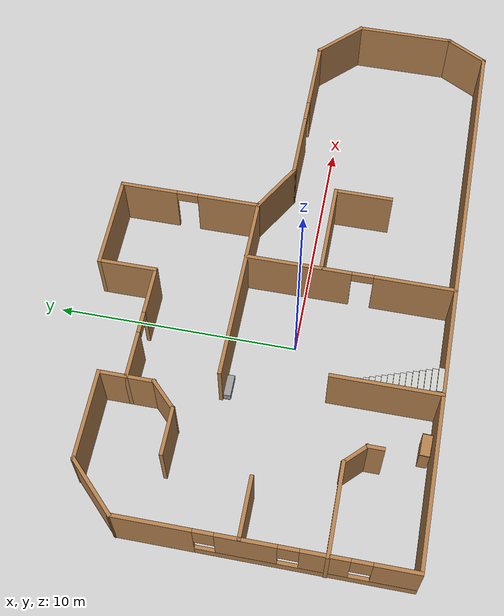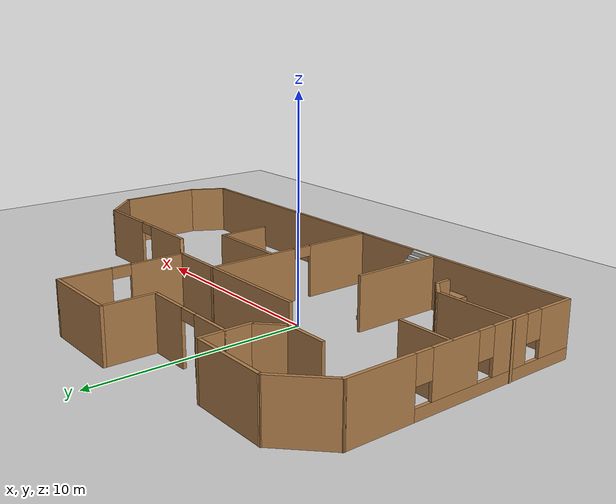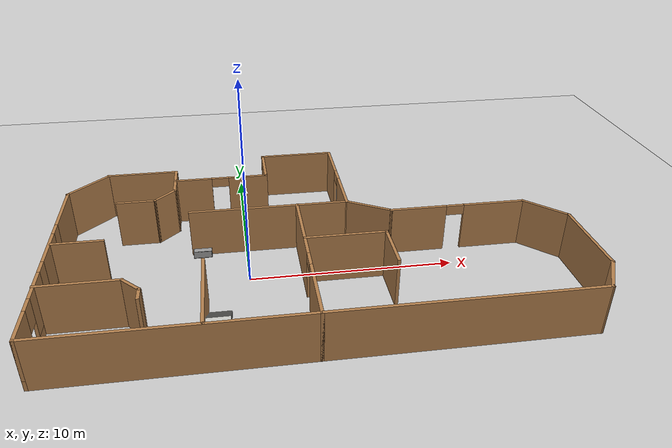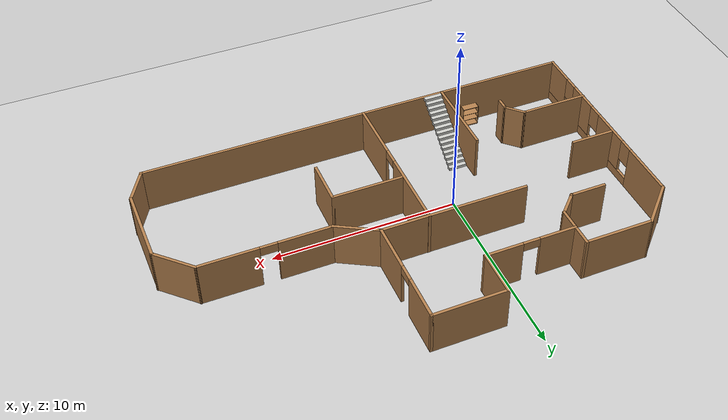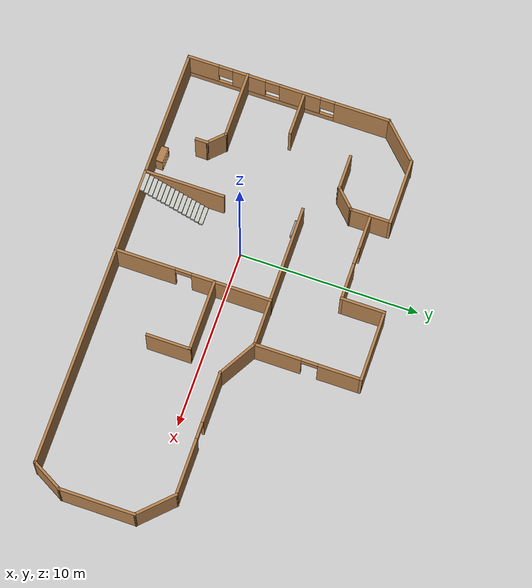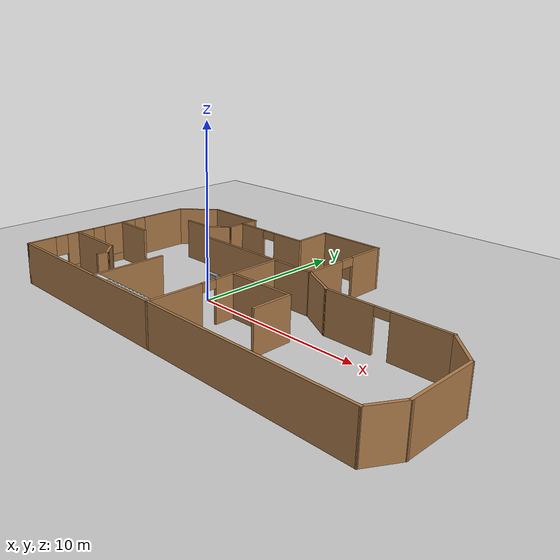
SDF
<sdf version="1.6">
 <world name="default">
  <model name="ground_plane">
   <static>1</static>
   <link name="link">
    <collision name="collision">
     <geometry><plane><normal>0 0 1</normal><size>100 100</size></plane></geometry>
     <surface><friction><ode><mu>100</mu><mu2>50</mu2></ode></friction></surface>
    </collision>
    <visual name="visual">
     <cast_shadows>0</cast_shadows>
     <geometry><plane><normal>0 0 1</normal><size>100 100</size></plane></geometry>
     <material>
      <script><uri>file://media/materials/scripts/gazebo.material</uri><name>Gazebo/Grey</name></script>
     </material>
    </visual>
   </link>
  </model>
  <model name="fireHouse">
   <pose>3.35703 1.18268 0 0 -0 0</pose>
   <link name="Stairs_2">
    <visual name="Stairs_2_Visual_0">
     <pose>-4.78332 -3.76901 0.083333 0 -0 0</pose>
     <geometry><box><size>1 0.233333 0.166667</size></box></geometry>
     <material>
      <script><uri>file://media/materials/scripts/gazebo.material</uri><name>Gazebo/CeilingTiled</name></script>
      <ambient>0.435294 0.796078 0.67451 1</ambient>
     </material>
     <meta><layer>0</layer></meta>
    </visual>
    <collision name="Stairs_2_Collision_0">
     <geometry><box><size>1 0.233333 0.166667</size></box></geometry>
     <pose>-4.78332 -3.76901 0.083333 0 -0 0</pose>
    </collision>
    <visual name="Stairs_2_Visual_1">
     <pose>-4.78332 -4.00234 0.25 0 -0 0</pose>
     <geometry><box><size>1 0.233333 0.166667</size></box></geometry>
     <material>
      <script><uri>file://media/materials/scripts/gazebo.material</uri><name>Gazebo/CeilingTiled</name></script>
      <ambient>0.435294 0.796078 0.67451 1</ambient>
     </material>
     <meta><layer>0</layer></meta>
    </visual>
    <collision name="Stairs_2_Collision_1">
     <geometry><box><size>1 0.233333 0.166667</size></box></geometry>
     <pose>-4.78332 -4.00234 0.25 0 -0 0</pose>
    </collision>
    <visual name="Stairs_2_Visual_2">
     <pose>-4.78332 -4.23567 0.416667 0 -0 0</pose>
     <geometry><box><size>1 0.233333 0.166667</size></box></geometry>
     <material>
      <script><uri>file://media/materials/scripts/gazebo.material</uri><name>Gazebo/CeilingTiled</name></script>
      <ambient>0.435294 0.796078 0.67451 1</ambient>
     </material>
     <meta><layer>0</layer></meta>
    </visual>
    <collision name="Stairs_2_Collision_2">
     <geometry><box><size>1 0.233333 0.166667</size></box></geometry>
     <pose>-4.78332 -4.23567 0.416667 0 -0 0</pose>
    </collision>
    <visual name="Stairs_2_Visual_3">
     <pose>-4.78332 -4.46901 0.583333 0 -0 0</pose>
     <geometry><box><size>1 0.233333 0.166667</size></box></geometry>
     <material>
      <script><uri>file://media/materials/scripts/gazebo.material</uri><name>Gazebo/CeilingTiled</name></script>
      <ambient>0.435294 0.796078 0.67451 1</ambient>
     </material>
     <meta><layer>0</layer></meta>
    </visual>
    <collision name="Stairs_2_Collision_3">
     <geometry><box><size>1 0.233333 0.166667</size></box></geometry>
     <pose>-4.78332 -4.46901 0.583333 0 -0 0</pose>
    </collision>
    <visual name="Stairs_2_Visual_4">
     <pose>-4.78332 -4.70234 0.75 0 -0 0</pose>
     <geometry><box><size>1 0.233333 0.166667</size></box></geometry>
     <material>
      <script><uri>file://media/materials/scripts/gazebo.material</uri><name>Gazebo/CeilingTiled</name></script>
      <ambient>0.435294 0.796078 0.67451 1</ambient>
     </material>
     <meta><layer>0</layer></meta>
    </visual>
    <collision name="Stairs_2_Collision_4">
     <geometry><box><size>1 0.233333 0.166667</size></box></geometry>
     <pose>-4.78332 -4.70234 0.75 0 -0 0</pose>
    </collision>
    <visual name="Stairs_2_Visual_5">
     <pose>-4.78332 -4.93567 0.916667 0 -0 0</pose>
     <geometry><box><size>1 0.233333 0.166667</size></box></geometry>
     <material>
      <script><uri>file://media/materials/scripts/gazebo.material</uri><name>Gazebo/CeilingTiled</name></script>
      <ambient>0.435294 0.796078 0.67451 1</ambient>
     </material>
     <meta><layer>0</layer></meta>
    </visual>
    <collision name="Stairs_2_Collision_5">
     <geometry><box><size>1 0.233333 0.166667</size></box></geometry>
     <pose>-4.78332 -4.93567 0.916667 0 -0 0</pose>
    </collision>
    <visual name="Stairs_2_Visual_6">
     <pose>-4.78332 -5.16901 1.08333 0 -0 0</pose>
     <geometry><box><size>1 0.233333 0.166667</size></box></geometry>
     <material>
      <script><uri>file://media/materials/scripts/gazebo.material</uri><name>Gazebo/CeilingTiled</name></script>
      <ambient>0.435294 0.796078 0.67451 1</ambient>
     </material>
     <meta><layer>0</layer></meta>
    </visual>
    <collision name="Stairs_2_Collision_6">
     <geometry><box><size>1 0.233333 0.166667</size></box></geometry>
     <pose>-4.78332 -5.16901 1.08333 0 -0 0</pose>
    </collision>
    <visual name="Stairs_2_Visual_7">
     <pose>-4.78332 -5.40234 1.25 0 -0 0</pose>
     <geometry><box><size>1 0.233333 0.166667</size></box></geometry>
     <material>
      <script><uri>file://media/materials/scripts/gazebo.material</uri><name>Gazebo/CeilingTiled</name></script>
      <ambient>0.435294 0.796078 0.67451 1</ambient>
     </material>
     <meta><layer>0</layer></meta>
    </visual>
    <collision name="Stairs_2_Collision_7">
     <geometry><box><size>1 0.233333 0.166667</size></box></geometry>
     <pose>-4.78332 -5.40234 1.25 0 -0 0</pose>
    </collision>
    <visual name="Stairs_2_Visual_8">
     <pose>-4.78332 -5.63567 1.41667 0 -0 0</pose>
     <geometry><box><size>1 0.233333 0.166667</size></box></geometry>
     <material>
      <script><uri>file://media/materials/scripts/gazebo.material</uri><name>Gazebo/CeilingTiled</name></script>
      <ambient>0.435294 0.796078 0.67451 1</ambient>
     </material>
     <meta><layer>0</layer></meta>
    </visual>
    <collision name="Stairs_2_Collision_8">
     <geometry><box><size>1 0.233333 0.166667</size></box></geometry>
     <pose>-4.78332 -5.63567 1.41667 0 -0 0</pose>
    </collision>
    <visual name="Stairs_2_Visual_9">
     <pose>-4.78332 -5.86901 1.58333 0 -0 0</pose>
     <geometry><box><size>1 0.233333 0.166667</size></box></geometry>
     <material>
      <script><uri>file://media/materials/scripts/gazebo.material</uri><name>Gazebo/CeilingTiled</name></script>
      <ambient>0.435294 0.796078 0.67451 1</ambient>
     </material>
     <meta><layer>0</layer></meta>
    </visual>
    <collision name="Stairs_2_Collision_9">
     <geometry><box><size>1 0.233333 0.166667</size></box></geometry>
     <pose>-4.78332 -5.86901 1.58333 0 -0 0</pose>
    </collision>
    <visual name="Stairs_2_Visual_10">
     <pose>-4.78332 -6.10234 1.75 0 -0 0</pose>
     <geometry><box><size>1 0.233333 0.166667</size></box></geometry>
     <material>
      <script><uri>file://media/materials/scripts/gazebo.material</uri><name>Gazebo/CeilingTiled</name></script>
      <ambient>0.435294 0.796078 0.67451 1</ambient>
     </material>
     <meta><layer>0</layer></meta>
    </visual>
    <collision name="Stairs_2_Collision_10">
     <geometry><box><size>1 0.233333 0.166667</size></box></geometry>
     <pose>-4.78332 -6.10234 1.75 0 -0 0</pose>
    </collision>
    <visual name="Stairs_2_Visual_11">
     <pose>-4.78332 -6.33568 1.91667 0 -0 0</pose>
     <geometry><box><size>1 0.233333 0.166667</size></box></geometry>
     <material>
      <script><uri>file://media/materials/scripts/gazebo.material</uri><name>Gazebo/CeilingTiled</name></script>
      <ambient>0.435294 0.796078 0.67451 1</ambient>
     </material>
     <meta><layer>0</layer></meta>
    </visual>
    <collision name="Stairs_2_Collision_11">
     <geometry><box><size>1 0.233333 0.166667</size></box></geometry>
     <pose>-4.78332 -6.33568 1.91667 0 -0 0</pose>
    </collision>
    <visual name="Stairs_2_Visual_12">
     <pose>-4.78332 -6.56901 2.08333 0 -0 0</pose>
     <geometry><box><size>1 0.233333 0.166667</size></box></geometry>
     <material>
      <script><uri>file://media/materials/scripts/gazebo.material</uri><name>Gazebo/CeilingTiled</name></script>
      <ambient>0.435294 0.796078 0.67451 1</ambient>
     </material>
     <meta><layer>0</layer></meta>
    </visual>
    <collision name="Stairs_2_Collision_12">
     <geometry><box><size>1 0.233333 0.166667</size></box></geometry>
     <pose>-4.78332 -6.56901 2.08333 0 -0 0</pose>
    </collision>
    <visual name="Stairs_2_Visual_13">
     <pose>-4.78332 -6.80234 2.25 0 -0 0</pose>
     <geometry><box><size>1 0.233333 0.166667</size></box></geometry>
     <material>
      <script><uri>file://media/materials/scripts/gazebo.material</uri><name>Gazebo/CeilingTiled</name></script>
      <ambient>0.435294 0.796078 0.67451 1</ambient>
     </material>
     <meta><layer>0</layer></meta>
    </visual>
    <collision name="Stairs_2_Collision_13">
     <geometry><box><size>1 0.233333 0.166667</size></box></geometry>
     <pose>-4.78332 -6.80234 2.25 0 -0 0</pose>
    </collision>
    <visual name="Stairs_2_Visual_14">
     <pose>-4.78332 -7.03567 2.41667 0 -0 0</pose>
     <geometry><box><size>1 0.233333 0.166667</size></box></geometry>
     <material>
      <script><uri>file://media/materials/scripts/gazebo.material</uri><name>Gazebo/CeilingTiled</name></script>
      <ambient>0.435294 0.796078 0.67451 1</ambient>
     </material>
     <meta><layer>0</layer></meta>
    </visual>
    <collision name="Stairs_2_Collision_14">
     <geometry><box><size>1 0.233333 0.166667</size></box></geometry>
     <pose>-4.78332 -7.03567 2.41667 0 -0 0</pose>
    </collision>
   </link>
   <link name="Wall_0">
    <collision name="Wall_0_Collision">
     <geometry><box><size>8 0.15 2.5</size></box></geometry>
     <pose>0 0 1.25 0 -0 0</pose>
    </collision>
    <visual name="Wall_0_Visual">
     <pose>0 0 1.25 0 -0 0</pose>
     <geometry><box><size>8 0.15 2.5</size></box></geometry>
     <material>
      <script><uri>file://media/materials/scripts/gazebo.material</uri><name>Gazebo/Wood</name></script>
      <ambient>1 1 1 1</ambient>
     </material>
     <meta><layer>0</layer></meta>
    </visual>
    <pose>-2.12919 1.38188 0 0 -0 0</pose>
   </link>
   <link name="Wall_1">
    <pose>1.79581 4.30688 0 0 -0 1.5708</pose>
    <visual name="Wall_1_Visual_0">
     <pose>-1.67134 0 1.25 0 -0 0</pose>
     <geometry><box><size>2.65733 0.15 2.5</size></box></geometry>
     <material>
      <script><uri>file://media/materials/scripts/gazebo.material</uri><name>Gazebo/Wood</name></script>
      <ambient>1 1 1 1</ambient>
     </material>
     <meta><layer>0</layer></meta>
    </visual>
    <collision name="Wall_1_Collision_0">
     <geometry><box><size>2.65733 0.15 2.5</size></box></geometry>
     <pose>-1.67134 0 1.25 0 -0 0</pose>
    </collision>
    <visual name="Wall_1_Visual_1">
     <pose>1.77866 0 1.25 0 -0 0</pose>
     <geometry><box><size>2.44267 0.15 2.5</size></box></geometry>
     <material>
      <script><uri>file://media/materials/scripts/gazebo.material</uri><name>Gazebo/Wood</name></script>
      <ambient>1 1 1 1</ambient>
     </material>
     <meta><layer>0</layer></meta>
    </visual>
    <collision name="Wall_1_Collision_1">
     <geometry><box><size>2.44267 0.15 2.5</size></box></geometry>
     <pose>1.77866 0 1.25 0 -0 0</pose>
    </collision>
    <visual name="Wall_1_Visual_2">
     <pose>0.107328 0 2.25 0 -0 0</pose>
     <geometry><box><size>0.9 0.15 0.5</size></box></geometry>
     <material>
      <script><uri>file://media/materials/scripts/gazebo.material</uri><name>Gazebo/Wood</name></script>
      <ambient>1 1 1 1</ambient>
     </material>
     <meta><layer>0</layer></meta>
    </visual>
    <collision name="Wall_1_Collision_2">
     <geometry><box><size>0.9 0.15 0.5</size></box></geometry>
     <pose>0.107328 0 2.25 0 -0 0</pose>
    </collision>
   </link>
   <link name="Wall_10">
    <pose>-0.742669 -2.9066 0 0 -0 1.5708</pose>
    <visual name="Wall_10_Visual_0">
     <pose>-2.67248 0 1.25 0 -0 0</pose>
     <geometry><box><size>3.40504 0.15 2.5</size></box></geometry>
     <material>
      <script><uri>file://media/materials/scripts/gazebo.material</uri><name>Gazebo/Wood</name></script>
      <ambient>1 1 1 1</ambient>
     </material>
     <meta><layer>0</layer></meta>
    </visual>
    <collision name="Wall_10_Collision_0">
     <geometry><box><size>3.40504 0.15 2.5</size></box></geometry>
     <pose>-2.67248 0 1.25 0 -0 0</pose>
    </collision>
    <visual name="Wall_10_Visual_1">
     <pose>2.15252 0 1.25 0 -0 0</pose>
     <geometry><box><size>4.44496 0.15 2.5</size></box></geometry>
     <material>
      <script><uri>file://media/materials/scripts/gazebo.material</uri><name>Gazebo/Wood</name></script>
      <ambient>1 1 1 1</ambient>
     </material>
     <meta><layer>0</layer></meta>
    </visual>
    <collision name="Wall_10_Collision_1">
     <geometry><box><size>4.44496 0.15 2.5</size></box></geometry>
     <pose>2.15252 0 1.25 0 -0 0</pose>
    </collision>
    <visual name="Wall_10_Visual_2">
     <pose>-0.519959 0 2.25 0 -0 0</pose>
     <geometry><box><size>0.9 0.15 0.5</size></box></geometry>
     <material>
      <script><uri>file://media/materials/scripts/gazebo.material</uri><name>Gazebo/Wood</name></script>
      <ambient>1 1 1 1</ambient>
     </material>
     <meta><layer>0</layer></meta>
    </visual>
    <collision name="Wall_10_Collision_2">
     <geometry><box><size>0.9 0.15 0.5</size></box></geometry>
     <pose>-0.519959 0 2.25 0 -0 0</pose>
    </collision>
   </link>
   <link name="Wall_12">
    <collision name="Wall_12_Collision">
     <geometry><box><size>3.75 0.15 2.5</size></box></geometry>
     <pose>0 0 1.25 0 -0 0</pose>
    </collision>
    <visual name="Wall_12_Visual">
     <pose>0 0 1.25 0 -0 0</pose>
     <geometry><box><size>3.75 0.15 2.5</size></box></geometry>
     <material>
      <script><uri>file://media/materials/scripts/gazebo.material</uri><name>Gazebo/Wood</name></script>
      <ambient>1 1 1 1</ambient>
     </material>
     <meta><layer>0</layer></meta>
    </visual>
    <pose>-10.569 -3.86923 0 0 -0 0</pose>
   </link>
   <link name="Wall_13">
    <collision name="Wall_13_Collision">
     <geometry><box><size>1.25 0.15 2.5</size></box></geometry>
     <pose>0 0 1.25 0 -0 0</pose>
    </collision>
    <visual name="Wall_13_Visual">
     <pose>0 0 1.25 0 -0 0</pose>
     <geometry><box><size>1.25 0.15 2.5</size></box></geometry>
     <material>
      <script><uri>file://media/materials/scripts/gazebo.material</uri><name>Gazebo/Wood</name></script>
      <ambient>1 1 1 1</ambient>
     </material>
     <meta><layer>0</layer></meta>
    </visual>
    <pose>-8.38014 -4.25814 0 0 -0 -0.785398</pose>
   </link>
   <link name="Wall_14">
    <collision name="Wall_14_Collision">
     <geometry><box><size>0.75 0.15 2.5</size></box></geometry>
     <pose>0 0 1.25 0 -0 0</pose>
    </collision>
    <visual name="Wall_14_Visual">
     <pose>0 0 1.25 0 -0 0</pose>
     <geometry><box><size>0.75 0.15 2.5</size></box></geometry>
     <material>
      <script><uri>file://media/materials/scripts/gazebo.material</uri><name>Gazebo/Wood</name></script>
      <ambient>1 1 1 1</ambient>
     </material>
     <meta><layer>0</layer></meta>
    </visual>
    <pose>-7.99123 -4.94705 0 0 -0 -1.5708</pose>
   </link>
   <link name="Wall_16">
    <collision name="Wall_16_Collision">
     <geometry><box><size>4.5 0.15 2.5</size></box></geometry>
     <pose>0 0 1.25 0 -0 0</pose>
    </collision>
    <visual name="Wall_16_Visual">
     <pose>0 0 1.25 0 -0 0</pose>
     <geometry><box><size>4.5 0.15 2.5</size></box></geometry>
     <material>
      <script><uri>file://media/materials/scripts/gazebo.material</uri><name>Gazebo/Wood</name></script>
      <ambient>1 1 1 1</ambient>
     </material>
     <meta><layer>0</layer></meta>
    </visual>
    <pose>-5.38896 -5.01528 0 0 -0 1.5708</pose>
   </link>
   <link name="Wall_18">
    <collision name="Wall_18_Collision">
     <geometry><box><size>1.25 0.15 2.5</size></box></geometry>
     <pose>0 0 1.25 0 -0 0</pose>
    </collision>
    <visual name="Wall_18_Visual">
     <pose>0 0 1.25 0 -0 0</pose>
     <geometry><box><size>1.25 0.15 2.5</size></box></geometry>
     <material>
      <script><uri>file://media/materials/scripts/gazebo.material</uri><name>Gazebo/Wood</name></script>
      <ambient>1 1 1 1</ambient>
     </material>
     <meta><layer>0</layer></meta>
    </visual>
    <pose>-6.90419 4.33188 0 0 -0 -1.5708</pose>
   </link>
   <link name="Wall_19">
    <collision name="Wall_19_Collision">
     <geometry><box><size>1.5 0.15 2.5</size></box></geometry>
     <pose>0 0 1.25 0 -0 0</pose>
    </collision>
    <visual name="Wall_19_Visual">
     <pose>0 0 1.25 0 -0 0</pose>
     <geometry><box><size>1.5 0.15 2.5</size></box></geometry>
     <material>
      <script><uri>file://media/materials/scripts/gazebo.material</uri><name>Gazebo/Wood</name></script>
      <ambient>1 1 1 1</ambient>
     </material>
     <meta><layer>0</layer></meta>
    </visual>
    <pose>-7.38149 3.30458 0 0 -0 -2.35619</pose>
   </link>
   <link name="Wall_2">
    <collision name="Wall_2_Collision">
     <geometry><box><size>4 0.15 2.5</size></box></geometry>
     <pose>0 0 1.25 0 -0 0</pose>
    </collision>
    <visual name="Wall_2_Visual">
     <pose>0 0 1.25 0 -0 0</pose>
     <geometry><box><size>4 0.15 2.5</size></box></geometry>
     <material>
      <script><uri>file://media/materials/scripts/gazebo.material</uri><name>Gazebo/Wood</name></script>
      <ambient>1 1 1 1</ambient>
     </material>
     <meta><layer>0</layer></meta>
    </visual>
    <pose>-0.129191 7.23188 0 0 -0 3.14159</pose>
   </link>
   <link name="Wall_20">
    <collision name="Wall_20_Collision">
     <geometry><box><size>2 0.15 2.5</size></box></geometry>
     <pose>0 0 1.25 0 -0 0</pose>
    </collision>
    <visual name="Wall_20_Visual">
     <pose>0 0 1.25 0 -0 0</pose>
     <geometry><box><size>2 0.15 2.5</size></box></geometry>
     <material>
      <script><uri>file://media/materials/scripts/gazebo.material</uri><name>Gazebo/Wood</name></script>
      <ambient>1 1 1 1</ambient>
     </material>
     <meta><layer>0</layer></meta>
    </visual>
    <pose>-8.78378 2.82728 0 0 -0 3.14159</pose>
   </link>
   <link name="Wall_22">
    <collision name="Wall_22_Collision">
     <geometry><box><size>2.5 0.15 2.5</size></box></geometry>
     <pose>0 0 1.25 0 -0 0</pose>
    </collision>
    <visual name="Wall_22_Visual">
     <pose>0 0 1.25 0 -0 0</pose>
     <geometry><box><size>2.5 0.15 2.5</size></box></geometry>
     <material>
      <script><uri>file://media/materials/scripts/gazebo.material</uri><name>Gazebo/Wood</name></script>
      <ambient>1 1 1 1</ambient>
     </material>
     <meta><layer>0</layer></meta>
    </visual>
    <pose>-11.1463 -0.638335 0 0 -0 0</pose>
   </link>
   <link name="Wall_24">
    <collision name="Wall_24_Collision">
     <geometry><box><size>2.5 0.15 2.5</size></box></geometry>
     <pose>0 0 1.25 0 -0 0</pose>
    </collision>
    <visual name="Wall_24_Visual">
     <pose>0 0 1.25 0 -0 0</pose>
     <geometry><box><size>2.5 0.15 2.5</size></box></geometry>
     <material>
      <script><uri>file://media/materials/scripts/gazebo.material</uri><name>Gazebo/Wood</name></script>
      <ambient>1 1 1 1</ambient>
     </material>
     <meta><layer>0</layer></meta>
    </visual>
    <pose>2.81339 0.794377 0 0 -0 -0.523599</pose>
   </link>
   <link name="Wall_25">
    <pose>7.25597 0.206877 0 0 -0 0</pose>
    <visual name="Wall_25_Visual_0">
     <pose>-2.05121 0 1.25 0 -0 0</pose>
     <geometry><box><size>2.89757 0.15 2.5</size></box></geometry>
     <material>
      <script><uri>file://media/materials/scripts/gazebo.material</uri><name>Gazebo/Wood</name></script>
      <ambient>1 1 1 1</ambient>
     </material>
     <meta><layer>0</layer></meta>
    </visual>
    <collision name="Wall_25_Collision_0">
     <geometry><box><size>2.89757 0.15 2.5</size></box></geometry>
     <pose>-2.05121 0 1.25 0 -0 0</pose>
    </collision>
    <visual name="Wall_25_Visual_1">
     <pose>1.89879 0 1.25 0 -0 0</pose>
     <geometry><box><size>3.20243 0.15 2.5</size></box></geometry>
     <material>
      <script><uri>file://media/materials/scripts/gazebo.material</uri><name>Gazebo/Wood</name></script>
      <ambient>1 1 1 1</ambient>
     </material>
     <meta><layer>0</layer></meta>
    </visual>
    <collision name="Wall_25_Collision_1">
     <geometry><box><size>3.20243 0.15 2.5</size></box></geometry>
     <pose>1.89879 0 1.25 0 -0 0</pose>
    </collision>
    <visual name="Wall_25_Visual_2">
     <pose>-0.152427 0 2.25 0 -0 0</pose>
     <geometry><box><size>0.9 0.15 0.5</size></box></geometry>
     <material>
      <script><uri>file://media/materials/scripts/gazebo.material</uri><name>Gazebo/Wood</name></script>
      <ambient>1 1 1 1</ambient>
     </material>
     <meta><layer>0</layer></meta>
    </visual>
    <collision name="Wall_25_Collision_2">
     <geometry><box><size>0.9 0.15 0.5</size></box></geometry>
     <pose>-0.152427 0 2.25 0 -0 0</pose>
    </collision>
   </link>
   <link name="Wall_26">
    <collision name="Wall_26_Collision">
     <geometry><box><size>2.5 0.15 2.5</size></box></geometry>
     <pose>0 0 1.25 0 -0 0</pose>
    </collision>
    <visual name="Wall_26_Visual">
     <pose>0 0 1.25 0 -0 0</pose>
     <geometry><box><size>2.5 0.15 2.5</size></box></geometry>
     <material>
      <script><uri>file://media/materials/scripts/gazebo.material</uri><name>Gazebo/Wood</name></script>
      <ambient>1 1 1 1</ambient>
     </material>
     <meta><layer>0</layer></meta>
    </visual>
    <pose>11.5118 -0.623974 0 0 -0 -0.785398</pose>
   </link>
   <link name="Wall_29">
    <collision name="Wall_29_Collision">
     <geometry><box><size>12.25 0.15 2.5</size></box></geometry>
     <pose>0 0 1.25 0 -0 0</pose>
    </collision>
    <visual name="Wall_29_Visual">
     <pose>0 0 1.25 0 -0 0</pose>
     <geometry><box><size>12.25 0.15 2.5</size></box></geometry>
     <material>
      <script><uri>file://media/materials/scripts/gazebo.material</uri><name>Gazebo/Wood</name></script>
      <ambient>1 1 1 1</ambient>
     </material>
     <meta><layer>0</layer></meta>
    </visual>
    <pose>5.37793 -7.20492 0 0 -0 3.14159</pose>
   </link>
   <link name="Wall_3">
    <collision name="Wall_3_Collision">
     <geometry><box><size>2.5 0.15 2.5</size></box></geometry>
     <pose>0 0 1.25 0 -0 0</pose>
    </collision>
    <visual name="Wall_3_Visual">
     <pose>0 0 1.25 0 -0 0</pose>
     <geometry><box><size>2.5 0.15 2.5</size></box></geometry>
     <material>
      <script><uri>file://media/materials/scripts/gazebo.material</uri><name>Gazebo/Wood</name></script>
      <ambient>1 1 1 1</ambient>
     </material>
     <meta><layer>0</layer></meta>
    </visual>
    <pose>-2.05419 6.05688 0 0 -0 -1.5708</pose>
   </link>
   <link name="Wall_4">
    <pose>-4.47919 4.88188 0 0 -0 3.14159</pose>
    <visual name="Wall_4_Visual_0">
     <pose>-1.45655 0 1.25 0 -0 0</pose>
     <geometry><box><size>2.0869 0.15 2.5</size></box></geometry>
     <material>
      <script><uri>file://media/materials/scripts/gazebo.material</uri><name>Gazebo/Wood</name></script>
      <ambient>1 1 1 1</ambient>
     </material>
     <meta><layer>0</layer></meta>
    </visual>
    <collision name="Wall_4_Collision_0">
     <geometry><box><size>2.0869 0.15 2.5</size></box></geometry>
     <pose>-1.45655 0 1.25 0 -0 0</pose>
    </collision>
    <visual name="Wall_4_Visual_1">
     <pose>1.49345 0 1.25 0 -0 0</pose>
     <geometry><box><size>2.0131 0.15 2.5</size></box></geometry>
     <material>
      <script><uri>file://media/materials/scripts/gazebo.material</uri><name>Gazebo/Wood</name></script>
      <ambient>1 1 1 1</ambient>
     </material>
     <meta><layer>0</layer></meta>
    </visual>
    <collision name="Wall_4_Collision_1">
     <geometry><box><size>2.0131 0.15 2.5</size></box></geometry>
     <pose>1.49345 0 1.25 0 -0 0</pose>
    </collision>
    <visual name="Wall_4_Visual_2">
     <pose>0.036895 0 2.25 0 -0 0</pose>
     <geometry><box><size>0.9 0.15 0.5</size></box></geometry>
     <material>
      <script><uri>file://media/materials/scripts/gazebo.material</uri><name>Gazebo/Wood</name></script>
      <ambient>1 1 1 1</ambient>
     </material>
     <meta><layer>0</layer></meta>
    </visual>
    <collision name="Wall_4_Collision_2">
     <geometry><box><size>0.9 0.15 0.5</size></box></geometry>
     <pose>0.036895 0 2.25 0 -0 0</pose>
    </collision>
   </link>
   <link name="Wall_5">
    <collision name="Wall_5_Collision">
     <geometry><box><size>1.25 0.15 2.5</size></box></geometry>
     <pose>0 0 1.25 0 -0 0</pose>
    </collision>
    <visual name="Wall_5_Visual">
     <pose>0 0 1.25 0 -0 0</pose>
     <geometry><box><size>1.25 0.15 2.5</size></box></geometry>
     <material>
      <script><uri>file://media/materials/scripts/gazebo.material</uri><name>Gazebo/Wood</name></script>
      <ambient>1 1 1 1</ambient>
     </material>
     <meta><layer>0</layer></meta>
    </visual>
    <pose>-6.90419 5.43188 0 0 -0 1.5708</pose>
   </link>
   <link name="Wall_58">
    <collision name="Wall_58_Collision">
     <geometry><box><size>4.25 0.15 2.5</size></box></geometry>
     <pose>0 0 1.25 0 -0 0</pose>
    </collision>
    <visual name="Wall_58_Visual">
     <pose>0 0 1.25 0 -0 0</pose>
     <geometry><box><size>4.25 0.15 2.5</size></box></geometry>
     <material>
      <script><uri>file://media/materials/scripts/gazebo.material</uri><name>Gazebo/Wood</name></script>
      <ambient>1 1 1 1</ambient>
     </material>
     <meta><layer>0</layer></meta>
    </visual>
    <pose>12.3427 -3.50482 0 0 -0 -1.5708</pose>
   </link>
   <link name="Wall_59">
    <collision name="Wall_59_Collision">
     <geometry><box><size>2.03668 0.15 2.5</size></box></geometry>
     <pose>0 0 1.25 0 -0 0</pose>
    </collision>
    <visual name="Wall_59_Visual">
     <pose>0 0 1.25 0 -0 0</pose>
     <geometry><box><size>2.03668 0.15 2.5</size></box></geometry>
     <material>
      <script><uri>file://media/materials/scripts/gazebo.material</uri><name>Gazebo/Wood</name></script>
      <ambient>1 1 1 1</ambient>
     </material>
     <meta><layer>0</layer></meta>
    </visual>
    <pose>11.8853 -6.37987 0 0 -0 -2.07698</pose>
   </link>
   <link name="Wall_6">
    <collision name="Wall_6_Collision">
     <geometry><box><size>3.75 0.15 2.5</size></box></geometry>
     <pose>0 0 1.25 0 -0 0</pose>
    </collision>
    <visual name="Wall_6_Visual">
     <pose>0 0 1.25 0 -0 0</pose>
     <geometry><box><size>3.75 0.15 2.5</size></box></geometry>
     <material>
      <script><uri>file://media/materials/scripts/gazebo.material</uri><name>Gazebo/Wood</name></script>
      <ambient>1 1 1 1</ambient>
     </material>
     <meta><layer>0</layer></meta>
    </visual>
    <pose>-8.70419 5.98188 0 0 -0 3.14159</pose>
   </link>
   <link name="Wall_61">
    <collision name="Wall_61_Collision">
     <geometry><box><size>4 0.15 2.5</size></box></geometry>
     <pose>0 0 1.25 0 -0 0</pose>
    </collision>
    <visual name="Wall_61_Visual">
     <pose>0 0 1.25 0 -0 0</pose>
     <geometry><box><size>4 0.15 2.5</size></box></geometry>
     <material>
      <script><uri>file://media/materials/scripts/gazebo.material</uri><name>Gazebo/Wood</name></script>
      <ambient>1 1 1 1</ambient>
     </material>
     <meta><layer>0</layer></meta>
    </visual>
    <pose>1.20808 -1.71361 0 0 -0 0</pose>
   </link>
   <link name="Wall_62">
    <collision name="Wall_62_Collision">
     <geometry><box><size>2.5 0.15 2.5</size></box></geometry>
     <pose>0 0 1.25 0 -0 0</pose>
    </collision>
    <visual name="Wall_62_Visual">
     <pose>0 0 1.25 0 -0 0</pose>
     <geometry><box><size>2.5 0.15 2.5</size></box></geometry>
     <material>
      <script><uri>file://media/materials/scripts/gazebo.material</uri><name>Gazebo/Wood</name></script>
      <ambient>1 1 1 1</ambient>
     </material>
     <meta><layer>0</layer></meta>
    </visual>
    <pose>3.13308 -2.88861 0 0 -0 -1.5708</pose>
   </link>
   <link name="Wall_7">
    <collision name="Wall_7_Collision">
     <geometry><box><size>2.75 0.15 2.5</size></box></geometry>
     <pose>0 0 1.25 0 -0 0</pose>
    </collision>
    <visual name="Wall_7_Visual">
     <pose>0 0 1.25 0 -0 0</pose>
     <geometry><box><size>2.75 0.15 2.5</size></box></geometry>
     <material>
      <script><uri>file://media/materials/scripts/gazebo.material</uri><name>Gazebo/Wood</name></script>
      <ambient>1 1 1 1</ambient>
     </material>
     <meta><layer>0</layer></meta>
    </visual>
    <pose>-11.4234 5.06264 0 0 -0 -2.35619</pose>
   </link>
   <link name="Wall_8">
    <pose>-12.3427 -1.5316 0 0 -0 -1.5708</pose>
    <visual name="Wall_8_Visual_0">
     <pose>-4.18089 0 1.25 0 -0 0</pose>
     <geometry><box><size>3.13821 0.15 2.5</size></box></geometry>
     <material>
      <script><uri>file://media/materials/scripts/gazebo.material</uri><name>Gazebo/Wood</name></script>
      <ambient>1 1 1 1</ambient>
     </material>
     <meta><layer>0</layer></meta>
    </visual>
    <collision name="Wall_8_Collision_0">
     <geometry><box><size>3.13821 0.15 2.5</size></box></geometry>
     <pose>-4.18089 0 1.25 0 -0 0</pose>
    </collision>
    <visual name="Wall_8_Visual_1">
     <pose>1.56911 0 0.25 0 -0 0</pose>
     <geometry><box><size>8.36179 0.15 0.5</size></box></geometry>
     <material>
      <script><uri>file://media/materials/scripts/gazebo.material</uri><name>Gazebo/Wood</name></script>
      <ambient>1 1 1 1</ambient>
     </material>
     <meta><layer>0</layer></meta>
    </visual>
    <collision name="Wall_8_Collision_1">
     <geometry><box><size>8.36179 0.15 0.5</size></box></geometry>
     <pose>1.56911 0 0.25 0 -0 0</pose>
    </collision>
    <visual name="Wall_8_Visual_2">
     <pose>-0.653235 0 1.5 0 -0 0</pose>
     <geometry><box><size>2.3171 0.15 2</size></box></geometry>
     <material>
      <script><uri>file://media/materials/scripts/gazebo.material</uri><name>Gazebo/Wood</name></script>
      <ambient>1 1 1 1</ambient>
     </material>
     <meta><layer>0</layer></meta>
    </visual>
    <collision name="Wall_8_Collision_2">
     <geometry><box><size>2.3171 0.15 2</size></box></geometry>
     <pose>-0.653235 0 1.5 0 -0 0</pose>
    </collision>
    <visual name="Wall_8_Visual_3">
     <pose>2.23125 0 1.5 0 -0 0</pose>
     <geometry><box><size>1.85186 0.15 2</size></box></geometry>
     <material>
      <script><uri>file://media/materials/scripts/gazebo.material</uri><name>Gazebo/Wood</name></script>
      <ambient>1 1 1 1</ambient>
     </material>
     <meta><layer>0</layer></meta>
    </visual>
    <collision name="Wall_8_Collision_3">
     <geometry><box><size>1.85186 0.15 2</size></box></geometry>
     <pose>2.23125 0 1.5 0 -0 0</pose>
    </collision>
    <visual name="Wall_8_Visual_4">
     <pose>4.85359 0 1.5 0 -0 0</pose>
     <geometry><box><size>1.79282 0.15 2</size></box></geometry>
     <material>
      <script><uri>file://media/materials/scripts/gazebo.material</uri><name>Gazebo/Wood</name></script>
      <ambient>1 1 1 1</ambient>
     </material>
     <meta><layer>0</layer></meta>
    </visual>
    <collision name="Wall_8_Collision_4">
     <geometry><box><size>1.79282 0.15 2</size></box></geometry>
     <pose>4.85359 0 1.5 0 -0 0</pose>
    </collision>
    <visual name="Wall_8_Visual_5">
     <pose>-2.21179 0 1.9 0 -0 0</pose>
     <geometry><box><size>0.8 0.15 1.2</size></box></geometry>
     <material>
      <script><uri>file://media/materials/scripts/gazebo.material</uri><name>Gazebo/Wood</name></script>
      <ambient>1 1 1 1</ambient>
     </material>
     <meta><layer>0</layer></meta>
    </visual>
    <collision name="Wall_8_Collision_5">
     <geometry><box><size>0.8 0.15 1.2</size></box></geometry>
     <pose>-2.21179 0 1.9 0 -0 0</pose>
    </collision>
    <visual name="Wall_8_Visual_6">
     <pose>0.905316 0 1.9 0 -0 0</pose>
     <geometry><box><size>0.8 0.15 1.2</size></box></geometry>
     <material>
      <script><uri>file://media/materials/scripts/gazebo.material</uri><name>Gazebo/Wood</name></script>
      <ambient>1 1 1 1</ambient>
     </material>
     <meta><layer>0</layer></meta>
    </visual>
    <collision name="Wall_8_Collision_6">
     <geometry><box><size>0.8 0.15 1.2</size></box></geometry>
     <pose>0.905316 0 1.9 0 -0 0</pose>
    </collision>
    <visual name="Wall_8_Visual_7">
     <pose>3.55718 0 1.9 0 -0 0</pose>
     <geometry><box><size>0.8 0.15 1.2</size></box></geometry>
     <material>
      <script><uri>file://media/materials/scripts/gazebo.material</uri><name>Gazebo/Wood</name></script>
      <ambient>1 1 1 1</ambient>
     </material>
     <meta><layer>0</layer></meta>
    </visual>
    <collision name="Wall_8_Collision_7">
     <geometry><box><size>0.8 0.15 1.2</size></box></geometry>
     <pose>3.55718 0 1.9 0 -0 0</pose>
    </collision>
   </link>
   <link name="Wall_9">
    <collision name="Wall_9_Collision">
     <geometry><box><size>11.75 0.15 2.5</size></box></geometry>
     <pose>0 0 1.25 0 -0 0</pose>
    </collision>
    <visual name="Wall_9_Visual">
     <pose>0 0 1.25 0 -0 0</pose>
     <geometry><box><size>11.75 0.15 2.5</size></box></geometry>
     <material>
      <script><uri>file://media/materials/scripts/gazebo.material</uri><name>Gazebo/Wood</name></script>
      <ambient>0.921569 0.807843 0.615686 1</ambient>
     </material>
     <meta><layer>0</layer></meta>
    </visual>
    <pose>-6.54267 -7.2066 0 0 -0 0</pose>
   </link>
   <static>1</static>
  </model>
  <model name="Wall_Cabinet_36x15W">
   <link name="Wall_0">
    <pose>0 0 0.01 0 -0 0</pose>
    <inertial>
     <mass>1.9796</mass>
     <inertia><ixx>0.0145</ixx><iyy>0.1511</iyy><izz>0.1367</izz><ixy>0</ixy><ixz>0</ixz><iyz>0</iyz></inertia>
    </inertial>
    <collision name="Wall_0_Collision"><geometry><box><size>0.91 0.296 0.02</size></box></geometry></collision>
    <visual name="Wall_0_Visual">
     <geometry><box><size>0.91 0.296 0.02</size></box></geometry>
     <material>
      <script><uri>file://media/materials/scripts/gazebo.material</uri><name>Gazebo/Grey</name></script>
      <ambient>1 1 1 1</ambient>
     </material>
    </visual>
   </link>
   <joint name="0_2" type="fixed">
    <pose>-0.455 0 0 0 -0 0</pose>
    <parent>Wall_2</parent>
    <child>Wall_0</child>
    <axis>
     <xyz>0 0 1</xyz>
     <use_parent_model_frame>0</use_parent_model_frame>
     <limit><lower>-1e+16</lower><upper>1e+16</upper></limit>
    </axis>
   </joint>
   <joint name="0_4" type="fixed">
    <pose>0.455 0 0 0 -0 0</pose>
    <parent>Wall_4</parent>
    <child>Wall_0</child>
    <axis>
     <xyz>0 0 1</xyz>
     <use_parent_model_frame>0</use_parent_model_frame>
     <limit><lower>-1e+16</lower><upper>1e+16</upper></limit>
    </axis>
   </joint>
   <joint name="0_8" type="fixed">
    <pose>0 -0.148 0 0 -0 0</pose>
    <parent>Wall_8</parent>
    <child>Wall_0</child>
    <axis>
     <xyz>0 0 1</xyz>
     <use_parent_model_frame>0</use_parent_model_frame>
     <limit><lower>-1e+16</lower><upper>1e+16</upper></limit>
    </axis>
   </joint>
   <link name="Wall_2">
    <pose>-0.445 0 0.192 0 -0 0</pose>
    <inertial>
     <mass>0.8353</mass>
     <inertia><ixx>0.0061</ixx><iyy>0.0164</iyy><izz>0.0103</izz><ixy>0</ixy><ixz>0</ixz><iyz>0</iyz></inertia>
    </inertial>
    <collision name="Wall_2_Collision"><geometry><box><size>0.02 0.296 0.384</size></box></geometry></collision>
    <visual name="Wall_2_Visual">
     <geometry><box><size>0.02 0.296 0.384</size></box></geometry>
     <material>
      <script><uri>file://media/materials/scripts/gazebo.material</uri><name>Gazebo/Grey</name></script>
      <ambient>1 1 1 1</ambient>
     </material>
    </visual>
   </link>
   <link name="Wall_4">
    <pose>0.445 0 0.192 0 -0 0</pose>
    <inertial>
     <mass>0.8353</mass>
     <inertia><ixx>0.0061</ixx><iyy>0.0164</iyy><izz>0.0103</izz><ixy>0</ixy><ixz>0</ixz><iyz>0</iyz></inertia>
    </inertial>
    <collision name="Wall_4_Collision"><geometry><box><size>0.02 0.296 0.384</size></box></geometry></collision>
    <visual name="Wall_4_Visual">
     <geometry><box><size>0.02 0.296 0.384</size></box></geometry>
     <material>
      <script><uri>file://media/materials/scripts/gazebo.material</uri><name>Gazebo/Grey</name></script>
      <ambient>1 1 1 1</ambient>
     </material>
    </visual>
   </link>
   <link name="Wall_6">
    <pose>0 0 0.374 0 -0 0</pose>
    <inertial>
     <mass>1.9796</mass>
     <inertia><ixx>0.0145</ixx><iyy>0.1511</iyy><izz>0.1367</izz><ixy>0</ixy><ixz>0</ixz><iyz>0</iyz></inertia>
    </inertial>
    <collision name="Wall_6_Collision"><geometry><box><size>0.91 0.296 0.02</size></box></geometry></collision>
    <visual name="Wall_6_Visual">
     <geometry><box><size>0.91 0.296 0.02</size></box></geometry>
     <material>
      <script><uri>file://media/materials/scripts/gazebo.material</uri><name>Gazebo/Grey</name></script>
      <ambient>1 1 1 1</ambient>
     </material>
    </visual>
   </link>
   <joint name="6_2" type="fixed">
    <pose>-0.455 0 0 0 -0 0</pose>
    <parent>Wall_2</parent>
    <child>Wall_6</child>
    <axis>
     <xyz>0 0 1</xyz>
     <use_parent_model_frame>0</use_parent_model_frame>
     <limit><lower>-1e+16</lower><upper>1e+16</upper></limit>
    </axis>
   </joint>
   <joint name="6_4" type="fixed">
    <pose>0.455 0 0 0 -0 0</pose>
    <parent>Wall_4</parent>
    <child>Wall_6</child>
    <axis>
     <xyz>0 0 1</xyz>
     <use_parent_model_frame>0</use_parent_model_frame>
     <limit><lower>-1e+16</lower><upper>1e+16</upper></limit>
    </axis>
   </joint>
   <joint name="6_8" type="fixed">
    <pose>0 -0.148 0 0 -0 0</pose>
    <parent>Wall_8</parent>
    <child>Wall_6</child>
    <axis>
     <xyz>0 0 1</xyz>
     <use_parent_model_frame>0</use_parent_model_frame>
     <limit><lower>-1e+16</lower><upper>1e+16</upper></limit>
    </axis>
   </joint>
   <link name="Wall_8">
    <pose>0 -0.138 0.19 0 -0 0</pose>
    <inertial>
     <mass>2.5302</mass>
     <inertia><ixx>0.0305</ixx><iyy>0.1732</iyy><izz>0.2035</izz><ixy>0</ixy><ixz>0</ixz><iyz>0</iyz></inertia>
    </inertial>
    <collision name="Wall_8_Collision"><geometry><box><size>0.906 0.02 0.38</size></box></geometry></collision>
    <visual name="Wall_8_Visual">
     <geometry><box><size>0.906 0.02 0.38</size></box></geometry>
     <material>
      <script><uri>file://media/materials/scripts/gazebo.material</uri><name>Gazebo/Grey</name></script>
      <ambient>1 1 1 1</ambient>
     </material>
    </visual>
   </link>
   <joint name="8_2" type="fixed">
    <pose>-0.453 0 0 0 -0 0</pose>
    <parent>Wall_2</parent>
    <child>Wall_8</child>
    <axis>
     <xyz>0 1 0</xyz>
     <use_parent_model_frame>0</use_parent_model_frame>
     <limit><lower>-1e+16</lower><upper>1e+16</upper></limit>
    </axis>
   </joint>
   <joint name="8_4" type="fixed">
    <pose>0.453 0 0 0 -0 0</pose>
    <parent>Wall_4</parent>
    <child>Wall_8</child>
    <axis>
     <xyz>0 1 0</xyz>
     <use_parent_model_frame>0</use_parent_model_frame>
     <limit><lower>-1e+16</lower><upper>1e+16</upper></limit>
    </axis>
   </joint>
   <static>1</static>
   <pose>-2.24537 2.33735 0 0 -0 0</pose>
  </model>
  <model name="bookshelf">
   <static>1</static>
   <link name="link">
    <inertial><mass>1</mass></inertial>
    <collision name="back">
     <pose>0 0.005 0.6 0 -0 0</pose>
     <geometry><box><size>0.9 0.01 1.2</size></box></geometry>
    </collision>
    <visual name="visual1">
     <pose>0 0.005 0.6 0 -0 0</pose>
     <geometry><box><size>0.9 0.01 1.2</size></box></geometry>
     <material>
      <script><uri>file://media/materials/scripts/gazebo.material</uri><name>Gazebo/Wood</name></script>
     </material>
    </visual>
    <collision name="left_side">
     <pose>0.45 -0.195 0.6 0 -0 0</pose>
     <geometry><box><size>0.02 0.4 1.2</size></box></geometry>
    </collision>
    <visual name="visual2">
     <pose>0.45 -0.195 0.6 0 -0 0</pose>
     <geometry><box><size>0.02 0.4 1.2</size></box></geometry>
     <material>
      <script><uri>file://media/materials/scripts/gazebo.material</uri><name>Gazebo/Wood</name></script>
     </material>
    </visual>
    <collision name="right_side">
     <pose>-0.45 -0.195 0.6 0 -0 0</pose>
     <geometry><box><size>0.02 0.4 1.2</size></box></geometry>
    </collision>
    <visual name="visual3">
     <pose>-0.45 -0.195 0.6 0 -0 0</pose>
     <geometry><box><size>0.02 0.4 1.2</size></box></geometry>
     <material>
      <script><uri>file://media/materials/scripts/gazebo.material</uri><name>Gazebo/Wood</name></script>
     </material>
    </visual>
    <collision name="bottom">
     <pose>0 -0.195 0.03 0 -0 0</pose>
     <geometry><box><size>0.88 0.4 0.06</size></box></geometry>
    </collision>
    <visual name="visual4">
     <pose>0 -0.195 0.03 0 -0 0</pose>
     <geometry><box><size>0.88 0.4 0.06</size></box></geometry>
     <material>
      <script><uri>file://media/materials/scripts/gazebo.material</uri><name>Gazebo/Wood</name></script>
     </material>
    </visual>
    <collision name="top">
     <pose>0 -0.195 1.19 0 -0 0</pose>
     <geometry><box><size>0.88 0.4 0.02</size></box></geometry>
    </collision>
    <visual name="visual5">
     <pose>0 -0.195 1.19 0 -0 0</pose>
     <geometry><box><size>0.88 0.4 0.02</size></box></geometry>
     <material>
      <script><uri>file://media/materials/scripts/gazebo.material</uri><name>Gazebo/Wood</name></script>
     </material>
    </visual>
    <collision name="low_shelf">
     <pose>0 -0.195 0.43 0 -0 0</pose>
     <geometry><box><size>0.88 0.4 0.02</size></box></geometry>
    </collision>
    <visual name="visual6">
     <pose>0 -0.195 0.43 0 -0 0</pose>
     <geometry><box><size>0.88 0.4 0.02</size></box></geometry>
     <material>
      <script><uri>file://media/materials/scripts/gazebo.material</uri><name>Gazebo/Wood</name></script>
     </material>
    </visual>
    <collision name="high_shelf">
     <pose>0 -0.195 0.8 0 -0 0</pose>
     <geometry><box><size>0.88 0.4 0.02</size></box></geometry>
    </collision>
    <visual name="visual7">
     <pose>0 -0.195 0.8 0 -0 0</pose>
     <geometry><box><size>0.88 0.4 0.02</size></box></geometry>
     <material>
      <script><uri>file://media/materials/scripts/gazebo.material</uri><name>Gazebo/Wood</name></script>
     </material>
    </visual>
   </link>
   <pose>-3.66423 -5.90995 0 0 -0 3.10796</pose>
  </model>
 </world>
</sdf>
